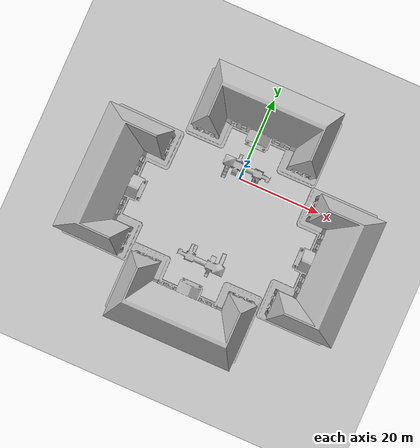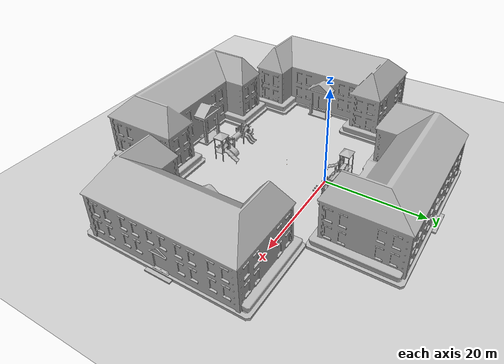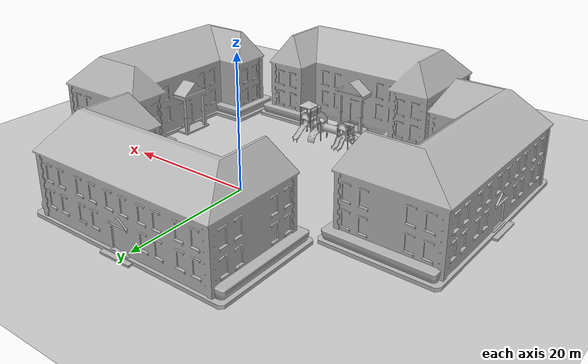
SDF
<sdf version="1.7">
 <world name="default">
  <light name="sun" type="directional">
   <pose>0 0 10 0 -0 0</pose>
   <diffuse>0.8 0.8 0.8 1</diffuse>
   <specular>0.2 0.2 0.2 1</specular>
   <attenuation>
    <range>1000</range>
    <constant>0.9</constant>
    <linear>0.01</linear>
    <quadratic>0.001</quadratic>
   </attenuation>
   <direction>-0.5 0.1 -0.9</direction>
   <spot><inner_angle>0</inner_angle><outer_angle>0</outer_angle><falloff>0</falloff></spot>
  </light>
  <model name="ground_plane">
   <static>1</static>
   <link name="link">
    <collision name="collision">
     <geometry><plane><normal>0 0 1</normal><size>100 100</size></plane></geometry>
     <surface><friction><ode><mu>100</mu><mu2>50</mu2></ode></friction></surface>
    </collision>
    <visual name="visual">
     <cast_shadows>0</cast_shadows>
     <geometry><plane><normal>0 0 1</normal><size>100 100</size></plane></geometry>
     <material>
      <script><uri>file://media/materials/scripts/gazebo.material</uri><name>Gazebo/Grey</name></script>
     </material>
    </visual>
   </link>
  </model>
  <gravity>0 0 -9.8</gravity>
  <magnetic_field>6e-06 2.3e-05 -4.2e-05</magnetic_field>
  <atmosphere type="adiabatic"/>
  <physics type="ode">
   <max_step_size>0.001</max_step_size>
   <real_time_factor>1</real_time_factor>
   <real_time_update_rate>1000</real_time_update_rate>
  </physics>
  <scene><ambient>0.4 0.4 0.4 1</ambient><background>0.7 0.7 0.7 1</background><shadows>1</shadows></scene>
  <spherical_coordinates>
   <surface_model>EARTH_WGS84</surface_model>
   <latitude_deg>0</latitude_deg>
   <longitude_deg>0</longitude_deg>
   <elevation>0</elevation>
   <heading_deg>0</heading_deg>
  </spherical_coordinates>
  <audio><device>default</device></audio>
  <model name="playground">
   <static>1</static>
   <link name="link">
    <collision name="collision">
     <geometry><mesh><uri>model://playground/meshes/playground.dae</uri></mesh></geometry>
    </collision>
    <visual name="visual">
     <geometry><mesh><uri>model://playground/meshes/playground.dae</uri></mesh></geometry>
    </visual>
   </link>
   <pose>0.69672 2.03143 0 0 -0 0</pose>
  </model>
  <model name="school">
   <static>1</static>
   <link name="link">
    <collision name="collision">
     <geometry><mesh><uri>model://school/meshes/school.dae</uri></mesh></geometry>
    </collision>
    <visual name="visual"><geometry><mesh><uri>model://school/meshes/school.dae</uri></mesh></geometry></visual>
   </link>
   <pose>0.306438 15.8702 0 0 -0 0</pose>
  </model>
  <model name="school_clone">
   <static>1</static>
   <link name="link">
    <collision name="collision">
     <geometry><mesh><uri>model://school/meshes/school.dae</uri></mesh></geometry>
    </collision>
    <visual name="visual"><geometry><mesh><uri>model://school/meshes/school.dae</uri></mesh></geometry></visual>
   </link>
   <pose>27.3733 -11.5432 0 0 0 -1.57423</pose>
  </model>
  <model name="school_clone_clone">
   <static>1</static>
   <link name="link">
    <collision name="collision">
     <geometry><mesh><uri>model://school/meshes/school.dae</uri></mesh></geometry>
    </collision>
    <visual name="visual"><geometry><mesh><uri>model://school/meshes/school.dae</uri></mesh></geometry></visual>
   </link>
   <pose>-27.4623 -11.6154 0 0 -0 1.55425</pose>
  </model>
  <model name="school_clone_0">
   <static>1</static>
   <link name="link">
    <collision name="collision">
     <geometry><mesh><uri>model://school/meshes/school.dae</uri></mesh></geometry>
    </collision>
    <visual name="visual"><geometry><mesh><uri>model://school/meshes/school.dae</uri></mesh></geometry></visual>
   </link>
   <pose>-0.411482 -34.4187 0 0 0 -3.14159</pose>
  </model>
  <model name="playground_clone">
   <static>1</static>
   <link name="link">
    <collision name="collision">
     <geometry><mesh><uri>model://playground/meshes/playground.dae</uri></mesh></geometry>
    </collision>
    <visual name="visual">
     <geometry><mesh><uri>model://playground/meshes/playground.dae</uri></mesh></geometry>
    </visual>
   </link>
   <pose>-0.712148 -20.7966 0 0 -0 3.14159</pose>
  </model>
  <model name="vehicle">
   <model name="velodyne_hdl-32">
    <link name="base">
     <pose>0 0 0.029335 0 -0 0</pose>
     <inertial>
      <mass>1.2</mass>
      <inertia>
       <ixx>0.00108747</ixx>
       <iyy>0.00108747</iyy>
       <izz>0.00109244</izz>
       <ixy>0</ixy>
       <ixz>0</ixz>
       <iyz>0</iyz>
      </inertia>
     </inertial>
     <visual name="base_visual">
      <pose>0 0 -0.029335 0 -0 0</pose>
      <geometry><mesh><uri>model://velodyne_hdl32/meshes/velodyne_base.dae</uri></mesh></geometry>
      <material><shader type="pixel"/></material>
     </visual>
     <collision name="base_collision">
      <geometry><cylinder><radius>0.04267</radius><length>0.05867</length></cylinder></geometry>
      <surface>
       <friction>
        <ode><mu>1</mu><mu2>1</mu2><fdir1>0 0 0</fdir1><slip1>0</slip1><slip2>0</slip2></ode>
        <torsional>
         <coefficient>1</coefficient>
         <patch_radius>0</patch_radius>
         <surface_radius>0</surface_radius>
         <use_patch_radius>1</use_patch_radius>
         <ode><slip>0</slip></ode>
        </torsional>
       </friction>
       <bounce><restitution_coefficient>0</restitution_coefficient><threshold>1e+06</threshold></bounce>
       <contact>
        <collide_without_contact>0</collide_without_contact>
        <collide_without_contact_bitmask>1</collide_without_contact_bitmask>
        <collide_bitmask>1</collide_bitmask>
        <ode>
         <soft_cfm>0</soft_cfm>
         <soft_erp>0.2</soft_erp>
         <kp>1e+13</kp>
         <kd>1</kd>
         <max_vel>0.01</max_vel>
         <min_depth>0</min_depth>
        </ode>
        <bullet>
         <split_impulse>1</split_impulse>
         <split_impulse_penetration_threshold>-0.01</split_impulse_penetration_threshold>
         <soft_cfm>0</soft_cfm>
         <soft_erp>0.2</soft_erp>
         <kp>1e+13</kp>
         <kd>1</kd>
        </bullet>
       </contact>
      </surface>
     </collision>
    </link>
    <link name="top">
     <pose>0 0 0.095455 0 -0 0</pose>
     <inertial>
      <mass>0.1</mass>
      <inertia>
       <ixx>9.062e-05</ixx>
       <iyy>9.062e-05</iyy>
       <izz>9.104e-05</izz>
       <ixy>0</ixy>
       <ixz>0</ixz>
       <iyz>0</iyz>
      </inertia>
     </inertial>
     <sensor name="sensor" type="ray">
      <pose>0 0 -0.004645 1.5707 -0 0</pose>
      <visualize>1</visualize>
      <update_rate>30</update_rate>
      <ray>
       <scan>
        <horizontal>
         <samples>32</samples>
         <resolution>1</resolution>
         <min_angle>-0.535292</min_angle>
         <max_angle>0.186227</max_angle>
        </horizontal>
        <vertical><samples>1</samples><min_angle>0</min_angle><max_angle>0</max_angle></vertical>
       </scan>
       <range><min>0.05</min><max>70</max><resolution>0.02</resolution></range>
      </ray>
     </sensor>
     <gravity>0</gravity>
     <visual name="top_visual">
      <pose>0 0 -0.037679 0 -0 1.5707</pose>
      <geometry><mesh><uri>model://velodyne_hdl32/meshes/velodyne_top.dae</uri></mesh></geometry>
      <material><shader type="pixel"><normal_map>__default__</normal_map></shader></material>
     </visual>
     <collision name="top_collision">
      <geometry><cylinder><radius>0.04267</radius><length>0.07357</length></cylinder></geometry>
      <surface>
       <friction>
        <ode><mu>1</mu><mu2>1</mu2><fdir1>0 0 0</fdir1><slip1>0</slip1><slip2>0</slip2></ode>
        <torsional>
         <coefficient>1</coefficient>
         <patch_radius>0</patch_radius>
         <surface_radius>0</surface_radius>
         <use_patch_radius>1</use_patch_radius>
         <ode><slip>0</slip></ode>
        </torsional>
       </friction>
       <bounce><restitution_coefficient>0</restitution_coefficient><threshold>1e+06</threshold></bounce>
       <contact>
        <collide_without_contact>0</collide_without_contact>
        <collide_without_contact_bitmask>1</collide_without_contact_bitmask>
        <collide_bitmask>1</collide_bitmask>
        <ode>
         <soft_cfm>0</soft_cfm>
         <soft_erp>0.2</soft_erp>
         <kp>1e+13</kp>
         <kd>1</kd>
         <max_vel>0.01</max_vel>
         <min_depth>0</min_depth>
        </ode>
        <bullet>
         <split_impulse>1</split_impulse>
         <split_impulse_penetration_threshold>-0.01</split_impulse_penetration_threshold>
         <soft_cfm>0</soft_cfm>
         <soft_erp>0.2</soft_erp>
         <kp>1e+13</kp>
         <kd>1</kd>
        </bullet>
       </contact>
      </surface>
     </collision>
    </link>
    <joint name="joint" type="revolute">
     <parent>base</parent>
     <child>top</child>
     <pose>0 0 -0.036785 0 -0 0</pose>
     <axis>
      <xyz>0 0 1</xyz>
      <limit><lower>-1e+16</lower><upper>1e+16</upper><effort>-1</effort><velocity>-1</velocity></limit>
      <dynamics>
       <spring_reference>0</spring_reference>
       <spring_stiffness>0</spring_stiffness>
       <damping>0</damping>
       <friction>0</friction>
      </dynamics>
     </axis>
     <physics>
      <ode><limit><cfm>0</cfm><erp>0.2</erp></limit><suspension><cfm>0</cfm><erp>0.2</erp></suspension></ode>
     </physics>
    </joint>
    <static>0</static>
    <plugin name="velodyne_plugin" filename="libvelodyne_plugin.so"><velocity>5</velocity></plugin>
    <pose>-0.000695 0.00376 0.554517 0 -0 0</pose>
   </model>
   <model name="wood_cube_10cm">
    <link name="link">
     <pose>0 0 0.05 0 -0 0</pose>
     <inertial>
      <mass>0.5167</mass>
      <inertia>
       <ixx>0.000861167</ixx>
       <ixy>0</ixy>
       <ixz>0</ixz>
       <iyy>0.000861167</iyy>
       <iyz>0</iyz>
       <izz>0.000861167</izz>
      </inertia>
     </inertial>
     <collision name="collision">
      <geometry><box><size>0.1 0.1 0.1</size></box></geometry>
      <surface>
       <contact>
        <poissons_ratio>0.347</poissons_ratio>
        <elastic_modulus>8.8e+09</elastic_modulus>
        <ode><kp>100000</kp><kd>100</kd><max_vel>100</max_vel><min_depth>0.001</min_depth></ode>
       </contact>
       <friction>
        <torsional>
         <coefficient>1</coefficient>
         <use_patch_radius>0</use_patch_radius>
         <surface_radius>0.01</surface_radius>
        </torsional>
       </friction>
      </surface>
     </collision>
     <visual name="visual">
      <geometry><box><size>0.1 0.1 0.1</size></box></geometry>
      <material>
       <script><uri>file://media/materials/scripts/gazebo.material</uri><name>Gazebo/Wood</name></script>
      </material>
     </visual>
    </link>
    <pose>0.000695 -0.00376 -0.554515 0 -0 0</pose>
   </model>
   <joint name="link_JOINT_0" type="fixed">
    <parent>wood_cube_10cm::link</parent>
    <child>velodyne_hdl-32::base</child>
    <physics>
     <ode><limit><cfm>0</cfm><erp>0.2</erp></limit><suspension><cfm>0</cfm><erp>0.2</erp></suspension></ode>
    </physics>
   </joint>
   <static>0</static>
   <pose>-0.809498 -8.83485 0.553473 -7.7e-05 -1.6e-05 -0.030526</pose>
  </model>
  <joint type="revolute" name="joint">
   <pose>0 0 -0.036785 0 0 0</pose>
   <parent>base</parent>
   <child>top</child>
   <axis><xyz>0 0 1</xyz><limit><lower>-10000000000000000</lower><upper>10000000000000000</upper></limit></axis>
  </joint>
 </world>
</sdf>
